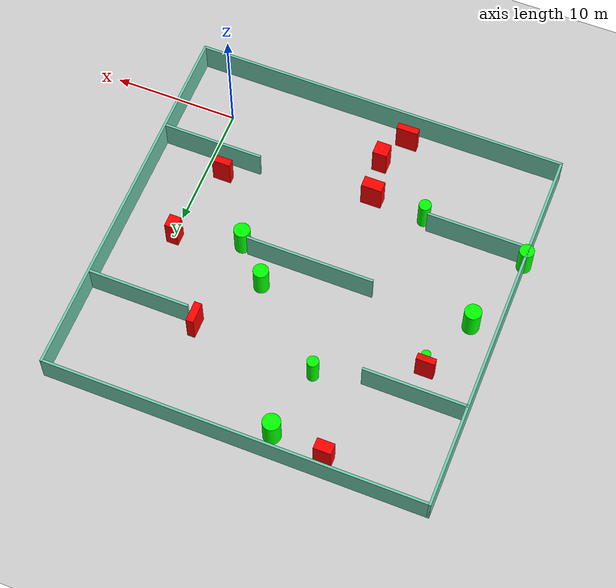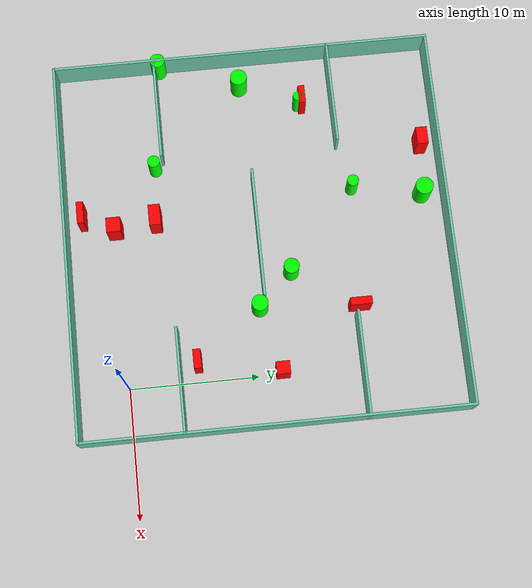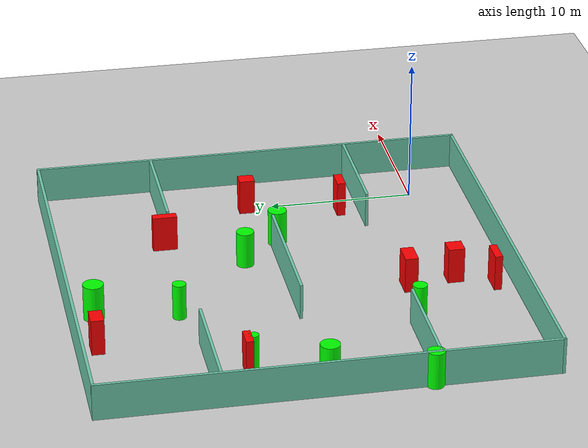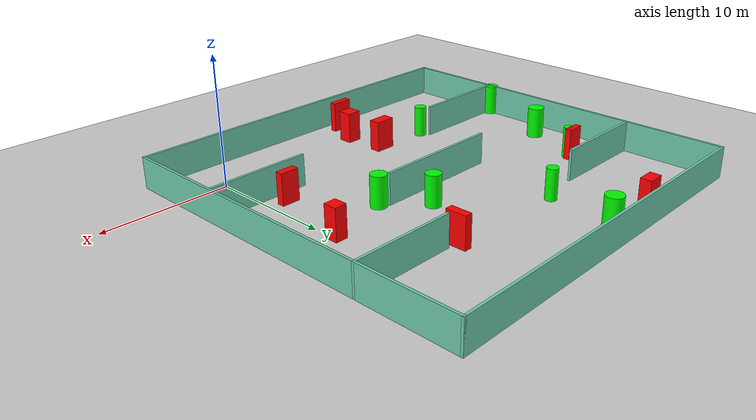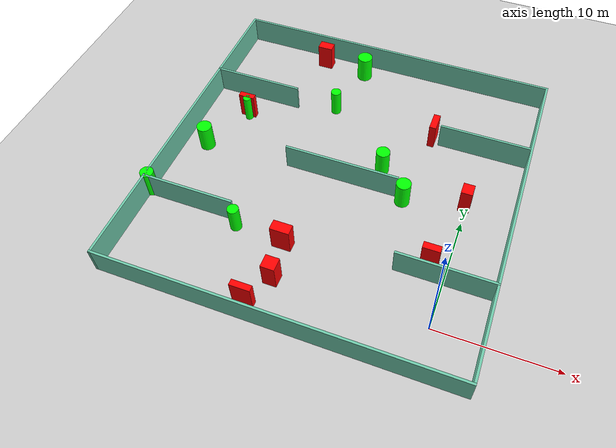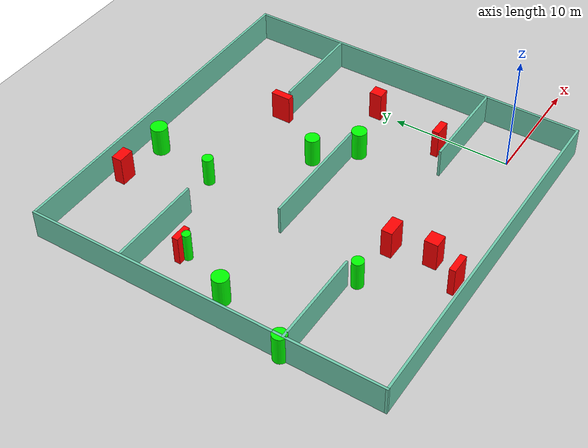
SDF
<sdf version="1.7">
 <world name="default">
  <light name="sun" type="directional">
   <pose>0 0 10 0 -0 0</pose>
   <diffuse>0.8 0.8 0.8 1</diffuse>
   <specular>0.2 0.2 0.2 1</specular>
   <attenuation>
    <range>1000</range>
    <constant>0.9</constant>
    <linear>0.01</linear>
    <quadratic>0.001</quadratic>
   </attenuation>
   <direction>-0.5 0.1 -0.9</direction>
   <spot><inner_angle>0</inner_angle><outer_angle>0</outer_angle><falloff>0</falloff></spot>
  </light>
  <model name="ground_plane">
   <static>1</static>
   <link name="link">
    <collision name="collision">
     <geometry><plane><normal>0 0 1</normal><size>100 100</size></plane></geometry>
     <surface>
      <contact><collide_bitmask>65535</collide_bitmask></contact>
      <friction><ode><mu>100</mu><mu2>50</mu2></ode></friction>
     </surface>
    </collision>
    <visual name="visual">
     <cast_shadows>0</cast_shadows>
     <geometry><plane><normal>0 0 1</normal><size>100 100</size></plane></geometry>
     <material>
      <script><uri>file://media/materials/scripts/gazebo.material</uri><name>Gazebo/Grey</name></script>
     </material>
    </visual>
   </link>
  </model>
  <gravity>0 0 -9.8</gravity>
  <magnetic_field>6e-06 2.3e-05 -4.2e-05</magnetic_field>
  <atmosphere type="adiabatic"/>
  <physics type="ode">
   <max_step_size>0.001</max_step_size>
   <real_time_factor>1</real_time_factor>
   <real_time_update_rate>1000</real_time_update_rate>
  </physics>
  <scene><ambient>0.4 0.4 0.4 1</ambient><background>0.7 0.7 0.7 1</background><shadows>1</shadows></scene>
  <spherical_coordinates>
   <surface_model>EARTH_WGS84</surface_model>
   <latitude_deg>0</latitude_deg>
   <longitude_deg>0</longitude_deg>
   <elevation>0</elevation>
   <heading_deg>0</heading_deg>
  </spherical_coordinates>
  <model name="my_base_walls">
   <link name="Wall_10">
    <collision name="Wall_10_Collision">
     <geometry><box><size>8.2 0.2 2.5</size></box></geometry>
     <pose>0 0 1.25 0 -0 0</pose>
    </collision>
    <visual name="Wall_10_Visual">
     <pose>0 0 1.25 0 -0 0</pose>
     <geometry><box><size>8.2 0.2 2.5</size></box></geometry>
     <material>
      <script><uri>file://media/materials/scripts/gazebo.material</uri><name>Gazebo/Grey</name></script>
      <ambient>0.435294 0.796078 0.67451 1</ambient>
     </material>
     <meta><layer>0</layer></meta>
    </visual>
    <pose>-11 -7 0 0 -0 0</pose>
   </link>
   <link name="Wall_12">
    <collision name="Wall_12_Collision">
     <geometry><box><size>8.2 0.2 2.5</size></box></geometry>
     <pose>0 0 1.25 0 -0 0</pose>
    </collision>
    <visual name="Wall_12_Visual">
     <pose>0 0 1.25 0 -0 0</pose>
     <geometry><box><size>8.2 0.2 2.5</size></box></geometry>
     <material>
      <script><uri>file://media/materials/scripts/gazebo.material</uri><name>Gazebo/Grey</name></script>
      <ambient>0.435294 0.796078 0.67451 1</ambient>
     </material>
     <meta><layer>0</layer></meta>
    </visual>
    <pose>-11 7 0 0 -0 0</pose>
   </link>
   <link name="Wall_14">
    <collision name="Wall_14_Collision">
     <geometry><box><size>8.2 0.2 2.5</size></box></geometry>
     <pose>0 0 1.25 0 -0 0</pose>
    </collision>
    <visual name="Wall_14_Visual">
     <pose>0 0 1.25 0 -0 0</pose>
     <geometry><box><size>8.2 0.2 2.5</size></box></geometry>
     <material>
      <script><uri>file://media/materials/scripts/gazebo.material</uri><name>Gazebo/Grey</name></script>
      <ambient>0.435294 0.796078 0.67451 1</ambient>
     </material>
     <meta><layer>0</layer></meta>
    </visual>
    <pose>11 7 0 0 -0 3.14159</pose>
   </link>
   <link name="Wall_16">
    <collision name="Wall_16_Collision">
     <geometry><box><size>10.2 0.2 2.5</size></box></geometry>
     <pose>0 0 1.25 0 -0 0</pose>
    </collision>
    <visual name="Wall_16_Visual">
     <pose>0 0 1.25 0 -0 0</pose>
     <geometry><box><size>10.2 0.2 2.5</size></box></geometry>
     <material>
      <script><uri>file://media/materials/scripts/gazebo.material</uri><name>Gazebo/Grey</name></script>
      <ambient>0.435294 0.796078 0.67451 1</ambient>
     </material>
     <meta><layer>0</layer></meta>
    </visual>
    <pose>0 0 0 0 -0 3.14159</pose>
   </link>
   <link name="Wall_2">
    <collision name="Wall_2_Collision">
     <geometry><box><size>30.2 0.2 2.5</size></box></geometry>
     <pose>0 0 1.25 0 -0 0</pose>
    </collision>
    <visual name="Wall_2_Visual">
     <pose>0 0 1.25 0 -0 0</pose>
     <geometry><box><size>30.2 0.2 2.5</size></box></geometry>
     <material>
      <script><uri>file://media/materials/scripts/gazebo.material</uri><name>Gazebo/Grey</name></script>
      <ambient>0.435294 0.796078 0.67451 1</ambient>
     </material>
     <meta><layer>0</layer></meta>
    </visual>
    <pose>0 -15 0 0 -0 3.14159</pose>
   </link>
   <link name="Wall_3">
    <collision name="Wall_3_Collision">
     <geometry><box><size>30.2 0.2 2.5</size></box></geometry>
     <pose>0 0 1.25 0 -0 0</pose>
    </collision>
    <visual name="Wall_3_Visual">
     <pose>0 0 1.25 0 -0 0</pose>
     <geometry><box><size>30.2 0.2 2.5</size></box></geometry>
     <material>
      <script><uri>file://media/materials/scripts/gazebo.material</uri><name>Gazebo/Grey</name></script>
      <ambient>0.435294 0.796078 0.67451 1</ambient>
     </material>
     <meta><layer>0</layer></meta>
    </visual>
    <pose>-15 0 0 0 -0 1.5708</pose>
   </link>
   <link name="Wall_4">
    <collision name="Wall_4_Collision">
     <geometry><box><size>30.2 0.2 2.5</size></box></geometry>
     <pose>0 0 1.25 0 -0 0</pose>
    </collision>
    <visual name="Wall_4_Visual">
     <pose>0 0 1.25 0 -0 0</pose>
     <geometry><box><size>30.2 0.2 2.5</size></box></geometry>
     <material>
      <script><uri>file://media/materials/scripts/gazebo.material</uri><name>Gazebo/Grey</name></script>
      <ambient>0.435294 0.796078 0.67451 1</ambient>
     </material>
     <meta><layer>0</layer></meta>
    </visual>
    <pose>0 15 0 0 -0 0</pose>
   </link>
   <link name="Wall_6">
    <collision name="Wall_6_Collision">
     <geometry><box><size>30.2 0.2 2.5</size></box></geometry>
     <pose>0 0 1.25 0 -0 0</pose>
    </collision>
    <visual name="Wall_6_Visual">
     <pose>0 0 1.25 0 -0 0</pose>
     <geometry><box><size>30.2 0.2 2.5</size></box></geometry>
     <material>
      <script><uri>file://media/materials/scripts/gazebo.material</uri><name>Gazebo/Grey</name></script>
      <ambient>0.435294 0.796078 0.67451 1</ambient>
     </material>
     <meta><layer>0</layer></meta>
    </visual>
    <pose>15 0 0 0 -0 1.5708</pose>
   </link>
   <link name="Wall_8">
    <collision name="Wall_8_Collision">
     <geometry><box><size>8.2 0.2 2.5</size></box></geometry>
     <pose>0 0 1.25 0 -0 0</pose>
    </collision>
    <visual name="Wall_8_Visual">
     <pose>0 0 1.25 0 -0 0</pose>
     <geometry><box><size>8.2 0.2 2.5</size></box></geometry>
     <material>
      <script><uri>file://media/materials/scripts/gazebo.material</uri><name>Gazebo/Grey</name></script>
      <ambient>0.435294 0.796078 0.67451 1</ambient>
     </material>
     <meta><layer>0</layer></meta>
    </visual>
    <pose>11 -7 0 0 -0 3.14159</pose>
   </link>
   <static>1</static>
   <pose>-11 11 0 0 -0 0</pose>
  </model>
  <model name="cylinder1">
   <static>1</static>
   <link name="link">
    <inertial>
     <mass>1</mass>
     <inertia><ixx>0.5</ixx><ixy>0</ixy><ixz>0</ixz><iyy>0.5</iyy><iyz>0</iyz><izz>1</izz></inertia>
    </inertial>
    <collision name="collision">
     <geometry><cylinder><radius>0.6391010988226713</radius><length>2.5</length></cylinder></geometry>
    </collision>
    <visual name="visual">
     <geometry><cylinder><radius>0.6391010988226713</radius><length>2.5</length></cylinder></geometry>
     <material>
      <ambient>0 1 0 1</ambient>
      <diffuse>0 1 0 1</diffuse>
      <specular>0.1 0.1 0.1 1</specular>
      <emissive>0 0 0 0</emissive>
     </material>
    </visual>
   </link>
   <pose>-5.320059433652602 10.577809001913648 1.25 0 0 0</pose>
  </model>
  <model name="cylinder2">
   <static>1</static>
   <link name="link">
    <inertial>
     <mass>1</mass>
     <inertia><ixx>0.5</ixx><ixy>0</ixy><ixz>0</ixz><iyy>0.5</iyy><iyz>0</iyz><izz>1</izz></inertia>
    </inertial>
    <collision name="collision">
     <geometry><cylinder><radius>0.35303488846456665</radius><length>2.5</length></cylinder></geometry>
    </collision>
    <visual name="visual">
     <geometry><cylinder><radius>0.35303488846456665</radius><length>2.5</length></cylinder></geometry>
     <material>
      <ambient>0 1 0 1</ambient>
      <diffuse>0 1 0 1</diffuse>
      <specular>0.1 0.1 0.1 1</specular>
      <emissive>0 0 0 0</emissive>
     </material>
    </visual>
   </link>
   <pose>-21.81387792176004 15.214250002023213 1.25 0 0 0</pose>
  </model>
  <model name="cylinder3">
   <static>1</static>
   <link name="link">
    <inertial>
     <mass>1</mass>
     <inertia><ixx>0.5</ixx><ixy>0</ixy><ixz>0</ixz><iyy>0.5</iyy><iyz>0</iyz><izz>1</izz></inertia>
    </inertial>
    <collision name="collision">
     <geometry><cylinder><radius>0.6950818540870681</radius><length>2.5</length></cylinder></geometry>
    </collision>
    <visual name="visual">
     <geometry><cylinder><radius>0.6950818540870681</radius><length>2.5</length></cylinder></geometry>
     <material>
      <ambient>0 1 0 1</ambient>
      <diffuse>0 1 0 1</diffuse>
      <specular>0.1 0.1 0.1 1</specular>
      <emissive>0 0 0 0</emissive>
     </material>
    </visual>
   </link>
   <pose>-13.384693523988437 24.34223467838939 1.25 0 0 0</pose>
  </model>
  <model name="cylinder4">
   <static>1</static>
   <link name="link">
    <inertial>
     <mass>1</mass>
     <inertia><ixx>0.5</ixx><ixy>0</ixy><ixz>0</ixz><iyy>0.5</iyy><iyz>0</iyz><izz>1</izz></inertia>
    </inertial>
    <collision name="collision">
     <geometry><cylinder><radius>0.4553129983440946</radius><length>2.5</length></cylinder></geometry>
    </collision>
    <visual name="visual">
     <geometry><cylinder><radius>0.4553129983440946</radius><length>2.5</length></cylinder></geometry>
     <material>
      <ambient>0 1 0 1</ambient>
      <diffuse>0 1 0 1</diffuse>
      <specular>0.1 0.1 0.1 1</specular>
      <emissive>0 0 0 0</emissive>
     </material>
    </visual>
   </link>
   <pose>-14.366624323373202 18.81124011981544 1.25 0 0 0</pose>
  </model>
  <model name="cylinder5">
   <static>1</static>
   <link name="link">
    <inertial>
     <mass>1</mass>
     <inertia><ixx>0.5</ixx><ixy>0</ixy><ixz>0</ixz><iyy>0.5</iyy><iyz>0</iyz><izz>1</izz></inertia>
    </inertial>
    <collision name="collision">
     <geometry><cylinder><radius>0.6026273352067941</radius><length>2.5</length></cylinder></geometry>
    </collision>
    <visual name="visual">
     <geometry><cylinder><radius>0.6026273352067941</radius><length>2.5</length></cylinder></geometry>
     <material>
      <ambient>0 1 0 1</ambient>
      <diffuse>0 1 0 1</diffuse>
      <specular>0.1 0.1 0.1 1</specular>
      <emissive>0 0 0 0</emissive>
     </material>
    </visual>
   </link>
   <pose>-7.985729337121729 13.29241196492855 1.25 0 0 0</pose>
  </model>
  <model name="cylinder6">
   <static>1</static>
   <link name="link">
    <inertial>
     <mass>1</mass>
     <inertia><ixx>0.5</ixx><ixy>0</ixy><ixz>0</ixz><iyy>0.5</iyy><iyz>0</iyz><izz>1</izz></inertia>
    </inertial>
    <collision name="collision">
     <geometry><cylinder><radius>0.6599613822182036</radius><length>2.5</length></cylinder></geometry>
    </collision>
    <visual name="visual">
     <geometry><cylinder><radius>0.6599613822182036</radius><length>2.5</length></cylinder></geometry>
     <material>
      <ambient>0 1 0 1</ambient>
      <diffuse>0 1 0 1</diffuse>
      <specular>0.1 0.1 0.1 1</specular>
      <emissive>0 0 0 0</emissive>
     </material>
    </visual>
   </link>
   <pose>-23.871869702194772 10.682913894930707 1.25 0 0 0</pose>
  </model>
  <model name="cylinder7">
   <static>1</static>
   <link name="link">
    <inertial>
     <mass>1</mass>
     <inertia><ixx>0.5</ixx><ixy>0</ixy><ixz>0</ixz><iyy>0.5</iyy><iyz>0</iyz><izz>1</izz></inertia>
    </inertial>
    <collision name="collision">
     <geometry><cylinder><radius>0.5827072799614545</radius><length>2.5</length></cylinder></geometry>
    </collision>
    <visual name="visual">
     <geometry><cylinder><radius>0.5827072799614545</radius><length>2.5</length></cylinder></geometry>
     <material>
      <ambient>0 1 0 1</ambient>
      <diffuse>0 1 0 1</diffuse>
      <specular>0.1 0.1 0.1 1</specular>
      <emissive>0 0 0 0</emissive>
     </material>
    </visual>
   </link>
   <pose>-25.945903494827093 4.321657483574613 1.25 0 0 0</pose>
  </model>
  <model name="cylinder8">
   <static>1</static>
   <link name="link">
    <inertial>
     <mass>1</mass>
     <inertia><ixx>0.5</ixx><ixy>0</ixy><ixz>0</ixz><iyy>0.5</iyy><iyz>0</iyz><izz>1</izz></inertia>
    </inertial>
    <collision name="collision">
     <geometry><cylinder><radius>0.4871972671263174</radius><length>2.5</length></cylinder></geometry>
    </collision>
    <visual name="visual">
     <geometry><cylinder><radius>0.4871972671263174</radius><length>2.5</length></cylinder></geometry>
     <material>
      <ambient>0 1 0 1</ambient>
      <diffuse>0 1 0 1</diffuse>
      <specular>0.1 0.1 0.1 1</specular>
      <emissive>0 0 0 0</emissive>
     </material>
    </visual>
   </link>
   <pose>-17.462894006760173 3.368409864652631 1.25 0 0 0</pose>
  </model>
  <model name="box1">
   <static>1</static>
   <link name="link">
    <inertial>
     <mass>1</mass>
     <inertia><ixx>0.083</ixx><ixy>0</ixy><ixz>0</ixz><iyy>0.083</iyy><iyz>0</iyz><izz>0.083</izz></inertia>
    </inertial>
    <collision name="collision">
     <geometry><box><size>1.4685032596709253 0.5863502859204616 2.5</size></box></geometry>
    </collision>
    <visual name="visual">
     <geometry><box><size>1.4685032596709253 0.5863502859204616 2.5</size></box></geometry>
     <material>
      <ambient>1 0 0 1</ambient>
      <diffuse>1 0 0 1</diffuse>
      <specular>0.1 0.1 0.1 1</specular>
      <emissive>0 0 0 0</emissive>
     </material>
    </visual>
    <sensor name="my_contact" type="contact">
     <contact><collision>box_collision</collision><topic>__default_topic__</topic></contact>
    </sensor>
   </link>
   <pose>-1.4878522253741409 5.4081102840896715 1.25 0 0 0</pose>
  </model>
  <model name="box2">
   <static>1</static>
   <link name="link">
    <inertial>
     <mass>1</mass>
     <inertia><ixx>0.083</ixx><ixy>0</ixy><ixz>0</ixz><iyy>0.083</iyy><iyz>0</iyz><izz>0.083</izz></inertia>
    </inertial>
    <collision name="collision">
     <geometry><box><size>0.9731232155528483 1.0679592481203546 2.5</size></box></geometry>
    </collision>
    <visual name="visual">
     <geometry><box><size>0.9731232155528483 1.0679592481203546 2.5</size></box></geometry>
     <material>
      <ambient>1 0 0 1</ambient>
      <diffuse>1 0 0 1</diffuse>
      <specular>0.1 0.1 0.1 1</specular>
      <emissive>0 0 0 0</emissive>
     </material>
    </visual>
    <sensor name="my_contact" type="contact">
     <contact><collision>box_collision</collision><topic>__default_topic__</topic></contact>
    </sensor>
   </link>
   <pose>-0.17660133641774323 11.837584231481785 1.25 0 0 0</pose>
  </model>
  <model name="box3">
   <static>1</static>
   <link name="link">
    <inertial>
     <mass>1</mass>
     <inertia><ixx>0.083</ixx><ixy>0</ixy><ixz>0</ixz><iyy>0.083</iyy><iyz>0</iyz><izz>0.083</izz></inertia>
    </inertial>
    <collision name="collision">
     <geometry><box><size>1.1684202475420595 1.1188155679557312 2.5</size></box></geometry>
    </collision>
    <visual name="visual">
     <geometry><box><size>1.1684202475420595 1.1188155679557312 2.5</size></box></geometry>
     <material>
      <ambient>1 0 0 1</ambient>
      <diffuse>1 0 0 1</diffuse>
      <specular>0.1 0.1 0.1 1</specular>
      <emissive>0 0 0 0</emissive>
     </material>
    </visual>
    <sensor name="my_contact" type="contact">
     <contact><collision>box_collision</collision><topic>__default_topic__</topic></contact>
    </sensor>
   </link>
   <pose>-12.629489818847997 -0.16477691753342683 1.25 0 0 0</pose>
  </model>
  <model name="box4">
   <static>1</static>
   <link name="link">
    <inertial>
     <mass>1</mass>
     <inertia><ixx>0.083</ixx><ixy>0</ixy><ixz>0</ixz><iyy>0.083</iyy><iyz>0</iyz><izz>0.083</izz></inertia>
    </inertial>
    <collision name="collision">
     <geometry><box><size>1.7238954882992326 0.5160258328089667 2.5</size></box></geometry>
    </collision>
    <visual name="visual">
     <geometry><box><size>1.7238954882992326 0.5160258328089667 2.5</size></box></geometry>
     <material>
      <ambient>1 0 0 1</ambient>
      <diffuse>1 0 0 1</diffuse>
      <specular>0.1 0.1 0.1 1</specular>
      <emissive>0 0 0 0</emissive>
     </material>
    </visual>
    <sensor name="my_contact" type="contact">
     <contact><collision>box_collision</collision><topic>__default_topic__</topic></contact>
    </sensor>
   </link>
   <pose>-13.86871827665096 -2.676462409827384 1.25 0 0 0</pose>
  </model>
  <model name="box5">
   <static>1</static>
   <link name="link">
    <inertial>
     <mass>1</mass>
     <inertia><ixx>0.083</ixx><ixy>0</ixy><ixz>0</ixz><iyy>0.083</iyy><iyz>0</iyz><izz>0.083</izz></inertia>
    </inertial>
    <collision name="collision">
     <geometry><box><size>1.444343036032111 0.5113745723400034 2.5</size></box></geometry>
    </collision>
    <visual name="visual">
     <geometry><box><size>1.444343036032111 0.5113745723400034 2.5</size></box></geometry>
     <material>
      <ambient>1 0 0 1</ambient>
      <diffuse>1 0 0 1</diffuse>
      <specular>0.1 0.1 0.1 1</specular>
      <emissive>0 0 0 0</emissive>
     </material>
    </visual>
    <sensor name="my_contact" type="contact">
     <contact><collision>box_collision</collision><topic>__default_topic__</topic></contact>
    </sensor>
   </link>
   <pose>-21.958127044465613 15.581275788705309 1.25 0 0 0</pose>
  </model>
  <model name="box6">
   <static>1</static>
   <link name="link">
    <inertial>
     <mass>1</mass>
     <inertia><ixx>0.083</ixx><ixy>0</ixy><ixz>0</ixz><iyy>0.083</iyy><iyz>0</iyz><izz>0.083</izz></inertia>
    </inertial>
    <collision name="collision">
     <geometry><box><size>1.3721394958436504 0.8756842223826398 2.5</size></box></geometry>
    </collision>
    <visual name="visual">
     <geometry><box><size>1.3721394958436504 0.8756842223826398 2.5</size></box></geometry>
     <material>
      <ambient>1 0 0 1</ambient>
      <diffuse>1 0 0 1</diffuse>
      <specular>0.1 0.1 0.1 1</specular>
      <emissive>0 0 0 0</emissive>
     </material>
    </visual>
    <sensor name="my_contact" type="contact">
     <contact><collision>box_collision</collision><topic>__default_topic__</topic></contact>
    </sensor>
   </link>
   <pose>-17.553926614873763 24.67760686301861 1.25 0 0 0</pose>
  </model>
  <model name="box7">
   <static>1</static>
   <link name="link">
    <inertial>
     <mass>1</mass>
     <inertia><ixx>0.083</ixx><ixy>0</ixy><ixz>0</ixz><iyy>0.083</iyy><iyz>0</iyz><izz>0.083</izz></inertia>
    </inertial>
    <collision name="collision">
     <geometry><box><size>0.5986336381144929 1.6715782099520333 2.5</size></box></geometry>
    </collision>
    <visual name="visual">
     <geometry><box><size>0.5986336381144929 1.6715782099520333 2.5</size></box></geometry>
     <material>
      <ambient>1 0 0 1</ambient>
      <diffuse>1 0 0 1</diffuse>
      <specular>0.1 0.1 0.1 1</specular>
      <emissive>0 0 0 0</emissive>
     </material>
    </visual>
    <sensor name="my_contact" type="contact">
     <contact><collision>box_collision</collision><topic>__default_topic__</topic></contact>
    </sensor>
   </link>
   <pose>-4.723956809007024 18.32065085339568 1.25 0 0 0</pose>
  </model>
  <model name="box8">
   <static>1</static>
   <link name="link">
    <inertial>
     <mass>1</mass>
     <inertia><ixx>0.083</ixx><ixy>0</ixy><ixz>0</ixz><iyy>0.083</iyy><iyz>0</iyz><izz>0.083</izz></inertia>
    </inertial>
    <collision name="collision">
     <geometry><box><size>1.6533264623777726 0.898480000202043 2.5</size></box></geometry>
    </collision>
    <visual name="visual">
     <geometry><box><size>1.6533264623777726 0.898480000202043 2.5</size></box></geometry>
     <material>
      <ambient>1 0 0 1</ambient>
      <diffuse>1 0 0 1</diffuse>
      <specular>0.1 0.1 0.1 1</specular>
      <emissive>0 0 0 0</emissive>
     </material>
    </visual>
    <sensor name="my_contact" type="contact">
     <contact><collision>box_collision</collision><topic>__default_topic__</topic></contact>
    </sensor>
   </link>
   <pose>-13.119895595104381 3.0820436352064915 1.25 0 0 0</pose>
  </model>
 </world>
</sdf>
